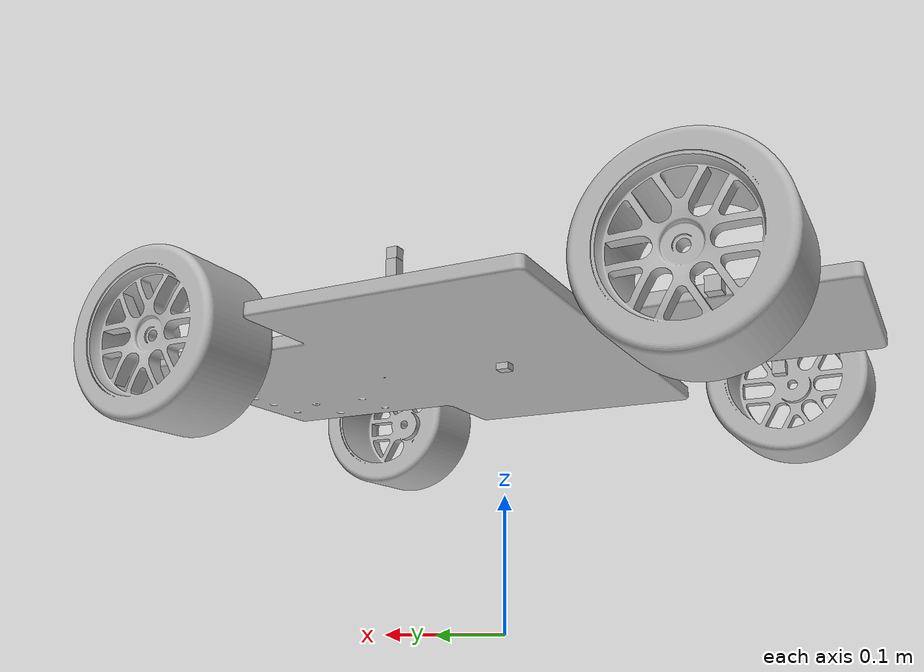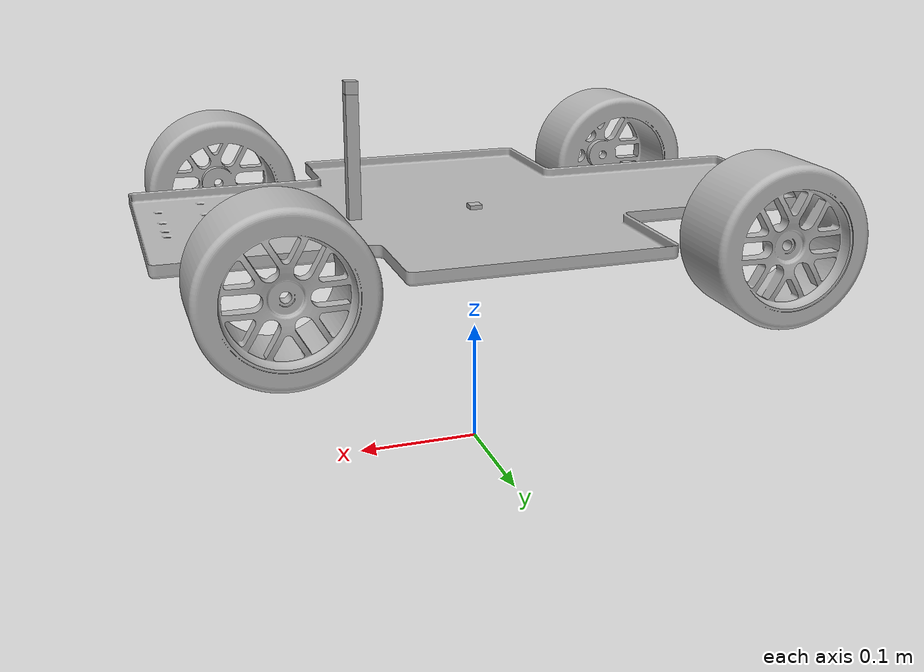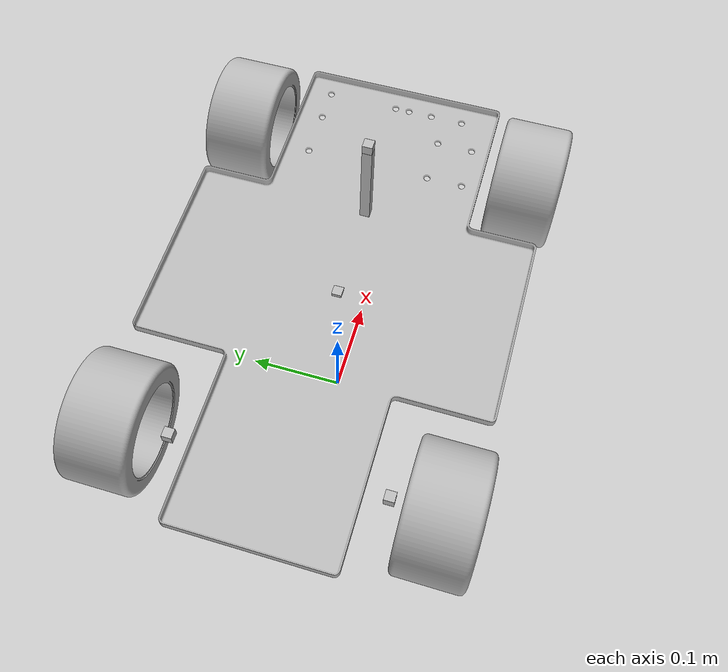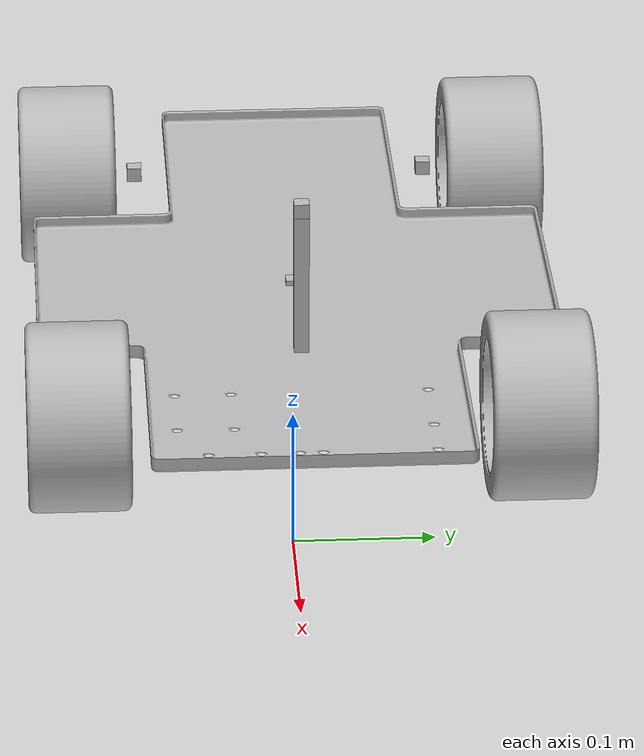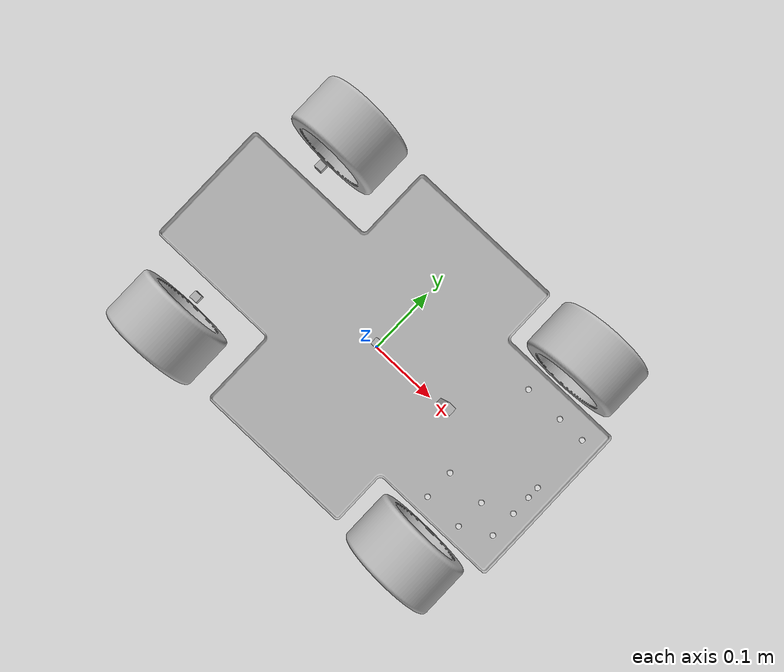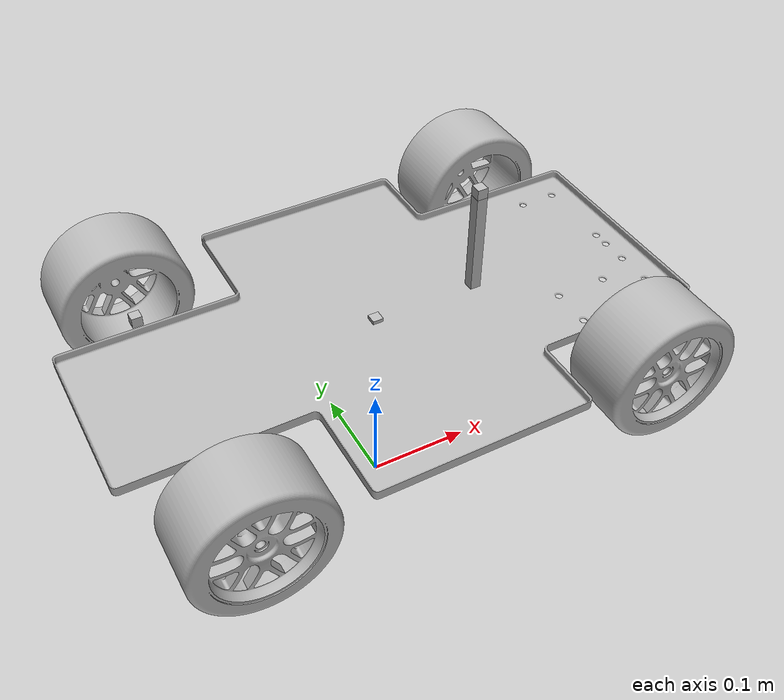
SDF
<sdf version='1.7'>
  <model name='vehicle'>
    <link name='vehicle'>
      <inertial>
        <pose>0.000498 0 0.001381 0 -0 0</pose>
        <mass>4.02</mass>
        <inertia>
          <ixx>0.167414</ixx>
          <ixy>-0.00015</ixy>
          <ixz>-0.000490239</ixz>
          <iyy>0.42271</iyy>
          <iyz>0</iyz>
          <izz>0.584908</izz>
        </inertia>
      </inertial>
      <collision name='vehicle_fixed_joint_lump__base_link_collision'>
        <pose>0 0 0.2 0 -0 0</pose>
        <geometry>
          <box>
            <size>0.53 0.14 0.01</size>
          </box>
        </geometry>
      </collision>
      <collision name='vehicle_fixed_joint_lump__camera_pole_link_collision_1'>
        <pose>0.1 0 0.25 0 -0 0</pose>
        <geometry>
          <box>
            <size>0.01 0.01 0.1</size>
          </box>
        </geometry>
      </collision>
      <collision name='vehicle_fixed_joint_lump__camera_link_collision_2'>
        <pose>0.1 0 0.305 0 -0 0</pose>
        <geometry>
          <box>
            <size>0.01 0.01 0.01</size>
          </box>
        </geometry>
      </collision>
      <visual name='vehicle_visual'>
        <pose>0 0 0.2 0 -0 0</pose>
        <geometry>
          <box>
            <size>0.01 0.01 0.01</size>
          </box>
        </geometry>
      </visual>
      <visual name='vehicle_fixed_joint_lump__base_link_visual_1'>
        <pose>0 0 0.2 0 -0 0</pose>
        <geometry>
          <mesh>
            <scale>1 1 1</scale>
            <uri>model://autonomous_vehicle_description/meshes/Base.stl</uri>
          </mesh>
        </geometry>
      </visual>
      <visual name='vehicle_fixed_joint_lump__camera_pole_link_visual_2'>
        <pose>0.1 0 0.25 0 -0 0</pose>
        <geometry>
          <box>
            <size>0.01 0.01 0.1</size>
          </box>
        </geometry>
      </visual>
      <visual name='vehicle_fixed_joint_lump__camera_link_visual_3'>
        <pose>0.1 0 0.305 0 -0 0</pose>
        <geometry>
          <box>
            <size>0.01 0.01 0.01</size>
          </box>
        </geometry>
      </visual>
    </link>
    <joint name='axle_left_rotate_joint' type='revolute'>
      <pose relative_to='vehicle'>-0.185 0.1025 0.2 0 -0 0</pose>
      <parent>vehicle</parent>
      <child>left_axle</child>
      <axis>
        <xyz>0 0 1</xyz>
        <limit>
          <lower>-0.35</lower>
          <upper>0.35</upper>
          <effort>1000</effort>
          <velocity>0.5</velocity>
        </limit>
        <dynamics>
          <spring_reference>0</spring_reference>
          <spring_stiffness>0</spring_stiffness>
        </dynamics>
      </axis>
    </joint>
    <link name='left_axle'>
      <pose relative_to='axle_left_rotate_joint'>0 0 0 0 -0 0</pose>
      <inertial>
        <pose>0 0 0 0 -0 0</pose>
        <mass>0.01</mass>
        <inertia>
          <ixx>0.001</ixx>
          <ixy>0</ixy>
          <ixz>0</ixz>
          <iyy>0.001</iyy>
          <iyz>0</iyz>
          <izz>0.001</izz>
        </inertia>
      </inertial>
      <visual name='left_axle_visual'>
        <pose>0 0 0 0 -0 0</pose>
        <geometry>
          <box>
            <size>0.01 0.01 0.01</size>
          </box>
        </geometry>
      </visual>
    </link>
    <joint name='wheel_left_rotate_joint' type='revolute'>
      <pose relative_to='left_axle'>0 0.0475 0 0 -0 0</pose>
      <parent>left_axle</parent>
      <child>LeftWheel_Front</child>
      <axis>
        <xyz>0 1 0</xyz>
        <limit>
          <lower>-1e+16</lower>
          <upper>1e+16</upper>
        </limit>
        <dynamics>
          <spring_reference>0</spring_reference>
          <spring_stiffness>0</spring_stiffness>
        </dynamics>
      </axis>
    </joint>
    <link name='LeftWheel_Front'>
      <pose relative_to='wheel_left_rotate_joint'>0 0 0 0 -0 0</pose>
      <inertial>
        <pose>0 0 0 0 -0 0</pose>
        <mass>1</mass>
        <inertia>
          <ixx>0.073454</ixx>
          <ixy>0</ixy>
          <ixz>0</ixz>
          <iyy>0.116212</iyy>
          <iyz>0</iyz>
          <izz>0.073454</izz>
        </inertia>
      </inertial>
      <collision name='LeftWheel_Front_collision'>
        <pose>0 0 0 1.5708 -0 0</pose>
        <geometry>
          <cylinder>
            <length>0.067</length>
            <radius>0.062</radius>
          </cylinder>
        </geometry>
      </collision>
      <visual name='LeftWheel_Front_visual'>
        <pose>0 0 0 0 -0 0</pose>
        <geometry>
          <mesh>
            <scale>1 1 1</scale>
            <uri>model://autonomous_vehicle_description/meshes/LeftWheel.stl</uri>
          </mesh>
        </geometry>
      </visual>
    </link>
    <joint name='axle_right_rotate_joint' type='revolute'>
      <pose relative_to='vehicle'>-0.185 -0.1025 0.2 0 -0 0</pose>
      <parent>vehicle</parent>
      <child>right_axle</child>
      <axis>
        <xyz>0 0 1</xyz>
        <limit>
          <lower>-0.35</lower>
          <upper>0.35</upper>
          <effort>1000</effort>
          <velocity>0.5</velocity>
        </limit>
        <dynamics>
          <spring_reference>0</spring_reference>
          <spring_stiffness>0</spring_stiffness>
        </dynamics>
      </axis>
    </joint>
    <link name='right_axle'>
      <pose relative_to='axle_right_rotate_joint'>0 0 0 0 -0 0</pose>
      <inertial>
        <pose>0 0 0 0 -0 0</pose>
        <mass>0.01</mass>
        <inertia>
          <ixx>0.001</ixx>
          <ixy>0</ixy>
          <ixz>0</ixz>
          <iyy>0.001</iyy>
          <iyz>0</iyz>
          <izz>0.001</izz>
        </inertia>
      </inertial>
      <visual name='right_axle_visual'>
        <pose>0 0 0 0 -0 0</pose>
        <geometry>
          <box>
            <size>0.01 0.01 0.01</size>
          </box>
        </geometry>
      </visual>
    </link>
    <joint name='wheel_right_rotate_joint' type='revolute'>
      <pose relative_to='right_axle'>0 -0.0475 0 0 -0 0</pose>
      <parent>right_axle</parent>
      <child>RightWheel_Front</child>
      <axis>
        <xyz>0 1 0</xyz>
        <limit>
          <lower>-1e+16</lower>
          <upper>1e+16</upper>
        </limit>
        <dynamics>
          <spring_reference>0</spring_reference>
          <spring_stiffness>0</spring_stiffness>
        </dynamics>
      </axis>
    </joint>
    <link name='RightWheel_Front'>
      <pose relative_to='wheel_right_rotate_joint'>0 0 0 0 -0 0</pose>
      <inertial>
        <pose>0 0 0 0 -0 0</pose>
        <mass>1</mass>
        <inertia>
          <ixx>0.073454</ixx>
          <ixy>0</ixy>
          <ixz>0</ixz>
          <iyy>0.116212</iyy>
          <iyz>0</iyz>
          <izz>0.073454</izz>
        </inertia>
      </inertial>
      <collision name='RightWheel_Front_collision'>
        <pose>0 0 0 1.5708 -0 0</pose>
        <geometry>
          <cylinder>
            <length>0.067</length>
            <radius>0.062</radius>
          </cylinder>
        </geometry>
      </collision>
      <visual name='RightWheel_Front_visual'>
        <pose>0 0 0 0 -0 0</pose>
        <geometry>
          <mesh>
            <scale>1 1 1</scale>
            <uri>model://autonomous_vehicle_description/meshes/RightWheel.stl</uri>
          </mesh>
        </geometry>
      </visual>
    </link>
    <joint name='LeftWheel_joint' type='revolute'>
      <pose relative_to='vehicle'>0.185 0.15 0.2 0 -0 0</pose>
      <parent>vehicle</parent>
      <child>LeftWheel_Back</child>
      <axis>
        <xyz>0 1 0</xyz>
        <limit>
          <lower>-1e+16</lower>
          <upper>1e+16</upper>
        </limit>
        <dynamics>
          <spring_reference>0</spring_reference>
          <spring_stiffness>0</spring_stiffness>
        </dynamics>
      </axis>
    </joint>
    <link name='LeftWheel_Back'>
      <pose relative_to='LeftWheel_joint'>0 0 0 0 -0 0</pose>
      <inertial>
        <pose>0 0 0 0 -0 0</pose>
        <mass>1</mass>
        <inertia>
          <ixx>0.073454</ixx>
          <ixy>0</ixy>
          <ixz>0</ixz>
          <iyy>0.116212</iyy>
          <iyz>0</iyz>
          <izz>0.073454</izz>
        </inertia>
      </inertial>
      <collision name='LeftWheel_Back_collision'>
        <pose>0 0 0 1.5708 -0 0</pose>
        <geometry>
          <cylinder>
            <length>0.067</length>
            <radius>0.062</radius>
          </cylinder>
        </geometry>
      </collision>
      <visual name='LeftWheel_Back_visual'>
        <pose>0 0 0 0 -0 0</pose>
        <geometry>
          <mesh>
            <scale>1 1 1</scale>
            <uri>model://autonomous_vehicle_description/meshes/LeftWheel.stl</uri>
          </mesh>
        </geometry>
      </visual>
    </link>
    <joint name='RightWheel_joint' type='revolute'>
      <pose relative_to='vehicle'>0.185 -0.15 0.2 0 -0 0</pose>
      <parent>vehicle</parent>
      <child>RightWheel_Back</child>
      <axis>
        <xyz>0 1 0</xyz>
        <limit>
          <lower>-1e+16</lower>
          <upper>1e+16</upper>
        </limit>
        <dynamics>
          <spring_reference>0</spring_reference>
          <spring_stiffness>0</spring_stiffness>
        </dynamics>
      </axis>
    </joint>
    <link name='RightWheel_Back'>
      <pose relative_to='RightWheel_joint'>0 0 0 0 -0 0</pose>
      <inertial>
        <pose>0 0 0 0 -0 0</pose>
        <mass>1</mass>
        <inertia>
          <ixx>0.073454</ixx>
          <ixy>0</ixy>
          <ixz>0</ixz>
          <iyy>0.116212</iyy>
          <iyz>0</iyz>
          <izz>0.073454</izz>
        </inertia>
      </inertial>
      <collision name='RightWheel_Back_collision'>
        <pose>0 0 0 1.5708 -0 0</pose>
        <geometry>
          <cylinder>
            <length>0.067</length>
            <radius>0.062</radius>
          </cylinder>
        </geometry>
      </collision>
      <visual name='RightWheel_Back_visual'>
        <pose>0 0 0 0 -0 0</pose>
        <geometry>
          <mesh>
            <scale>1 1 1</scale>
            <uri>model://autonomous_vehicle_description/meshes/RightWheel.stl</uri>
          </mesh>
        </geometry>
      </visual>
    </link>
    <static>0</static>
    <plugin name='gazebo_ros_control' filename='libgazebo_ros_control.so'>
      <robotNamespace>/</robotNamespace>
    </plugin>
  </model>
</sdf>
